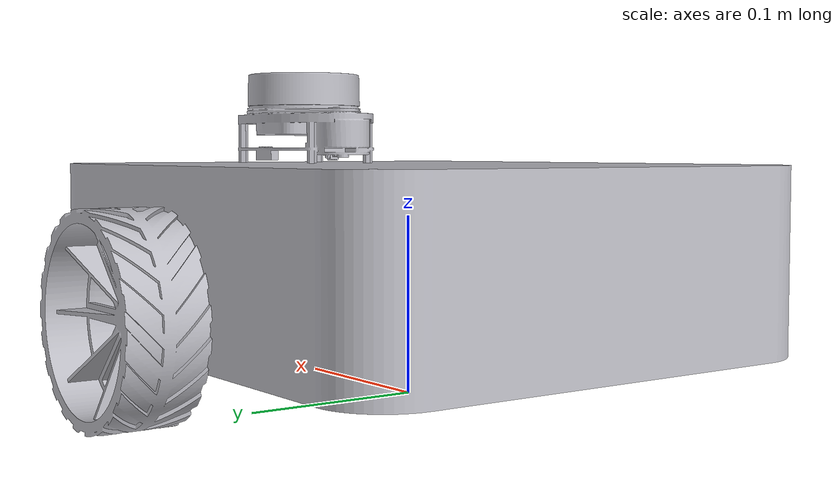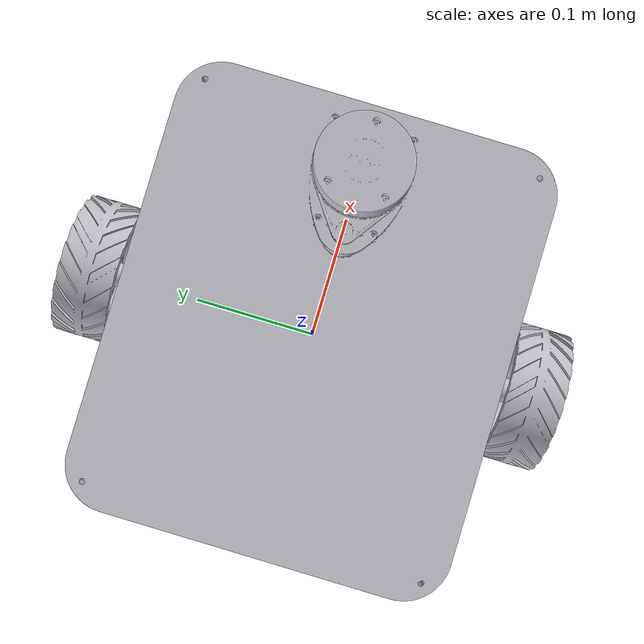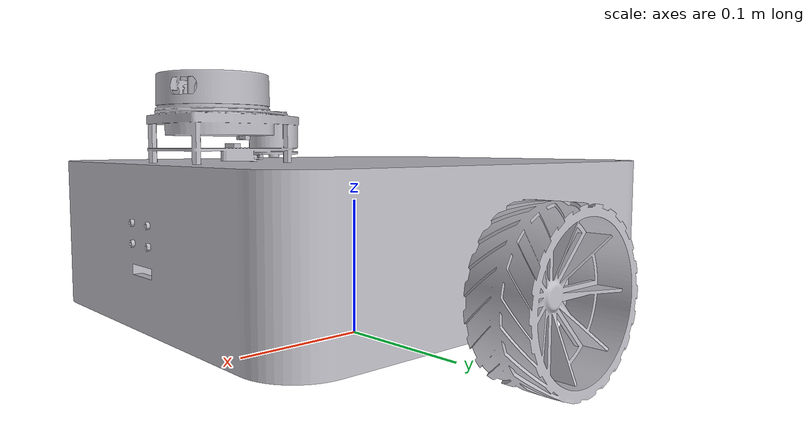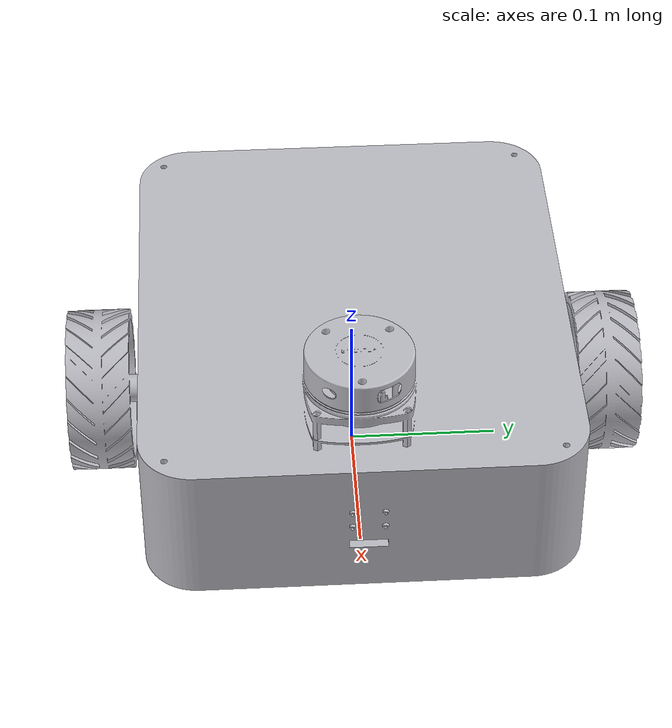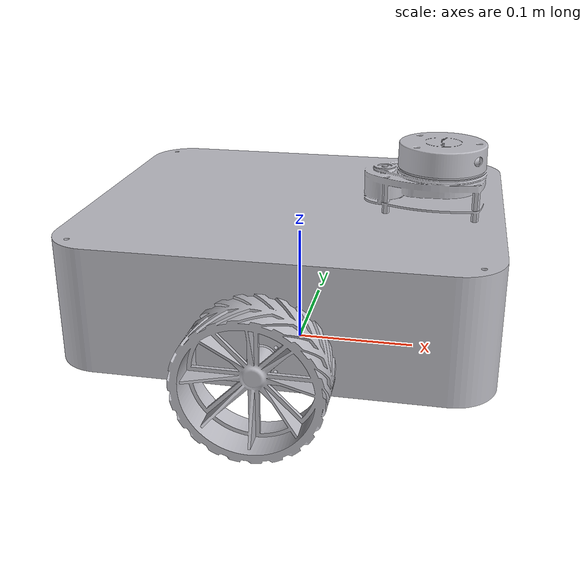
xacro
<?xml version="1.0" ?>
<robot name="bot" xmlns:xacro="http://www.ros.org/wiki/xacro">

<xacro:include filename="$(find bot_description)/urdf/materials.xacro" />
<xacro:include filename="$(find bot_description)/urdf/bot.trans" />
<xacro:include filename="$(find bot_description)/urdf/bot.gazebo" />

<link name="base_footprint">
</link>

<joint name="footprint2baselink" type="fixed">
  <parent link="base_footprint"/>
  <child link="base_link"/>
  <origin xyz="0 0 0" rpy="0 0 0"/>
  <axis xyz="0 0 0"/>
</joint>

<link name="base_link">
  <inertial>
    <origin xyz="0.002698320672702968 3.530562988808361e-17 0.05060913918526123" rpy="0 0 0"/>
    <mass value="8.73800025149821"/>
    <inertia ixx="0.115348" iyy="0.119778" izz="0.230759" ixy="0.0" iyz="0.0" ixz="-0.000949"/>
  </inertial>
  <visual>
    <origin xyz="0 0 0" rpy="0 0 0"/>
    <geometry>
      <mesh filename="file://$(find bot_description)/meshes/base_link.stl" scale="0.001 0.001 0.001"/>
    </geometry>
    <material name="silver"/>
  </visual>

  <inertial>
    <mass value="0.5"/>
    <inertia ixx="0.001" ixy="0.0" ixz="0.0" iyy="0.001" iyz="0.0" izz="0.001"/>
  </inertial>

  <collision>
    <origin xyz="0 0 0" rpy="0 0 0"/>
    <geometry>
      <mesh filename="file://$(find bot_description)/meshes/base_link.stl" scale="0.001 0.001 0.001"/>
    </geometry>
  </collision>
</link>

<link name="right_wheel_1">
  <inertial>
    <origin xyz="-5.790023100122029e-18 -0.012499999999999983 0.0" rpy="0 0 0"/>
    <mass value="0.1826050729899067"/>
    <inertia ixx="0.000124" iyy="0.000228" izz="0.000124" ixy="-0.0" iyz="0.0" ixz="0.0"/>
  </inertial>
  <visual>
    <origin xyz="-0.0 0.2 -0.05" rpy="0 0 0"/>
    <geometry>
      <mesh filename="file://$(find bot_description)/meshes/right_wheel_1.stl" scale="0.001 0.001 0.001"/>
    </geometry>
    <material name="silver"/>
  </visual>
  <collision>
    <origin xyz="-0.0 0.2 -0.05" rpy="0 0 0"/>
    <geometry>
      <mesh filename="file://$(find bot_description)/meshes/right_wheel_1.stl" scale="0.001 0.001 0.001"/>
    </geometry>
  </collision>

  <inertial>
    <mass value="0.5"/>
    <inertia ixx="0.001" ixy="0.0" ixz="0.0" iyy="0.001" iyz="0.0" izz="0.001"/>
  </inertial>
</link>

<link name="lidar_1">
  <inertial>
    <origin xyz="2.7755575615628914e-17 1.544006160032542e-17 0.012500000000000011" rpy="0 0 0"/>
    <mass value="0.8670059413129639"/>
    <inertia ixx="0.00035" iyy="0.00035" izz="0.00061" ixy="-0.0" iyz="0.0" ixz="0.0"/>
  </inertial>
  <visual>
    <origin xyz="-0.125 -0.0 -0.11" rpy="0 0 0"/>
    <geometry>
      <mesh filename="file://$(find bot_description)/meshes/lidar_1.stl" scale="0.001 0.001 0.001"/>
    </geometry>
    <material name="silver"/>
  </visual>
  <collision>
    <origin xyz="-0.125 -0.0 -0.11" rpy="0 0 0"/>
    <geometry>
      <mesh filename="file://$(find bot_description)/meshes/lidar_1.stl" scale="0.001 0.001 0.001"/>
    </geometry>
  </collision>
</link>

<link name="left_wheel_1">
  <inertial>
    <origin xyz="-5.790023100122029e-18 0.012499999999999983 0.0" rpy="0 0 0"/>
    <mass value="0.1826050729899067"/>
    <inertia ixx="0.000124" iyy="0.000228" izz="0.000124" ixy="-0.0" iyz="0.0" ixz="0.0"/>
  </inertial>
  <visual>
    <origin xyz="-0.0 -0.2 -0.05" rpy="0 0 0"/>
    <geometry>
      <mesh filename="file://$(find bot_description)/meshes/left_wheel_1.stl" scale="0.001 0.001 0.001"/>
    </geometry>
    <material name="silver"/>
  </visual>
  <collision>
    <origin xyz="-0.0 -0.2 -0.05" rpy="0 0 0"/>
    <geometry>
      <mesh filename="file://$(find bot_description)/meshes/left_wheel_1.stl" scale="0.001 0.001 0.001"/>
    </geometry>
  </collision>
</link>

<joint name="right_wheel_joint" type="continuous">
  <origin xyz="0.0 -0.2 0.05" rpy="0 0 0"/>
  <parent link="base_link"/>
  <child link="right_wheel_1"/>
  <axis xyz="0.0 1.0 0.0"/>
</joint>

<joint name="Rigid 2" type="fixed">
  <origin xyz="0.125 0.0 0.11" rpy="0 0 0"/>
  <parent link="base_link"/>
  <child link="lidar_1"/>
</joint>

<joint name="left_wheel_joint" type="continuous">
  <origin xyz="0.0 0.2 0.05" rpy="0 0 0"/>
  <parent link="base_link"/>
  <child link="left_wheel_1"/>
  <axis xyz="0.0 1.0 0.0"/>
</joint>

</robot>
